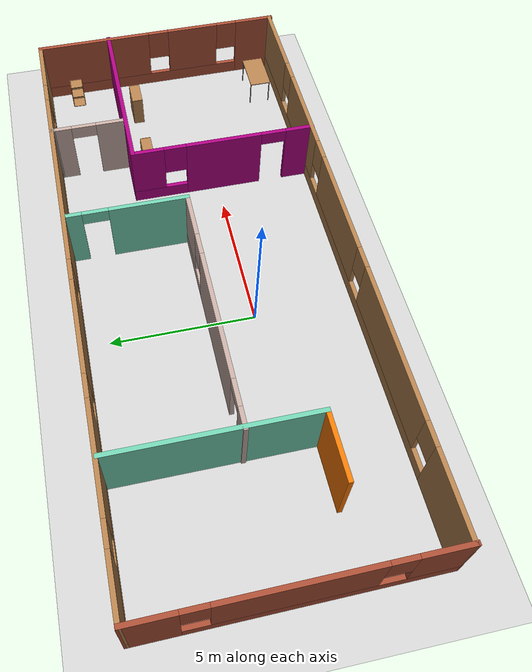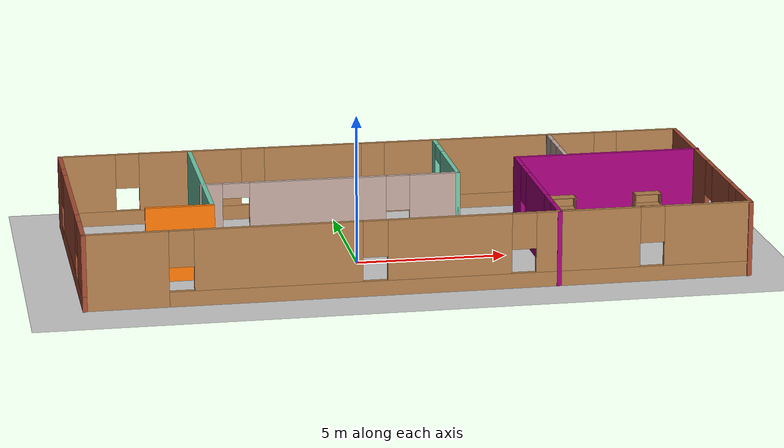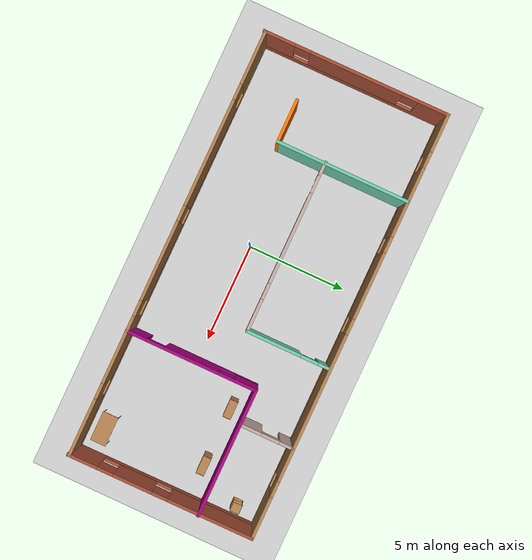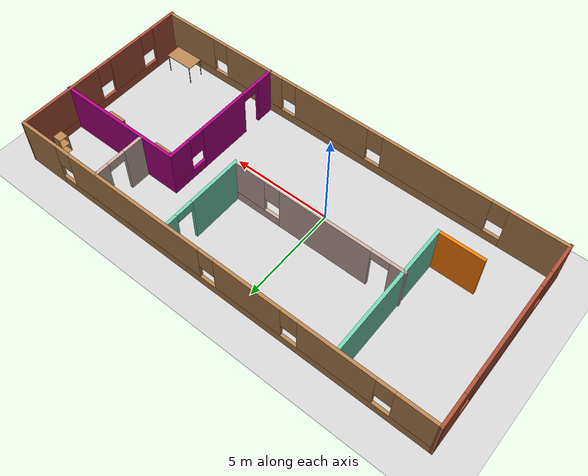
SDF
<sdf version="1.6">
 <world name="default">
  <model name="ground_plane">
   <static>1</static>
   <link name="link">
    <collision name="collision">
     <geometry><plane><normal>0 0 1</normal><size>100 100</size></plane></geometry>
     <surface>
      <contact><collide_bitmask>65535</collide_bitmask></contact>
      <friction><ode><mu>100</mu><mu2>50</mu2></ode></friction>
     </surface>
    </collision>
    <visual name="visual">
     <cast_shadows>0</cast_shadows>
     <geometry><plane><normal>0 0 1</normal><size>100 100</size></plane></geometry>
     <material>
      <script><uri>file://media/materials/scripts/gazebo.material</uri><name>Gazebo/Grey</name></script>
     </material>
    </visual>
   </link>
  </model>
  <model name="appartment">
   <pose>1.54362 1.13807 0 0 -0 0</pose>
   <link name="Wall_12">
    <collision name="Wall_12_Collision">
     <geometry><box><size>6.75 0.15 2.5</size></box></geometry>
     <pose>0 0 1.25 0 -0 0</pose>
    </collision>
    <visual name="Wall_12_Visual">
     <pose>0 0 1.25 0 -0 0</pose>
     <geometry><box><size>6.75 0.15 2.5</size></box></geometry>
     <material>
      <script><uri>file://media/materials/scripts/gazebo.material</uri><name>Gazebo/Grey</name></script>
      <ambient>0.435294 0.796078 0.67451 1</ambient>
     </material>
     <meta><layer>0</layer></meta>
    </visual>
    <pose>-6.40578 1.32366 0 0 0 -1.5708</pose>
   </link>
   <link name="Wall_13">
    <collision name="Wall_13_Collision">
     <geometry><box><size>2.25 0.15 2.5</size></box></geometry>
     <pose>0 0 1.25 0 -0 0</pose>
    </collision>
    <visual name="Wall_13_Visual">
     <pose>0 0 1.25 0 -0 0</pose>
     <geometry><box><size>2.25 0.15 2.5</size></box></geometry>
     <material>
      <script><uri>file://media/materials/scripts/gazebo.material</uri><name>Gazebo/Grey</name></script>
      <ambient>0.996078 0.47451 0.0196078 1</ambient>
     </material>
     <meta><layer>0</layer></meta>
    </visual>
    <pose>-7.45578 -1.97634 0 0 -0 3.14159</pose>
   </link>
   <link name="Wall_15">
    <pose>-2.15231 0.436508 0 0 -0 0</pose>
    <visual name="Wall_15_Visual_0">
     <pose>-4.00421 0 1.25 0 -0 0</pose>
     <geometry><box><size>0.741574 0.15 2.5</size></box></geometry>
     <material>
      <script><uri>file://media/materials/scripts/gazebo.material</uri><name>Gazebo/Grey</name></script>
      <ambient>0.760784 0.662745 0.627451 1</ambient>
     </material>
     <meta><layer>0</layer></meta>
    </visual>
    <collision name="Wall_15_Collision_0">
     <geometry><box><size>0.741574 0.15 2.5</size></box></geometry>
     <pose>-4.00421 0 1.25 0 -0 0</pose>
    </collision>
    <visual name="Wall_15_Visual_1">
     <pose>-0.436777 0 1.25 0 -0 0</pose>
     <geometry><box><size>4.5933 0.15 2.5</size></box></geometry>
     <material>
      <script><uri>file://media/materials/scripts/gazebo.material</uri><name>Gazebo/Grey</name></script>
      <ambient>0.760784 0.662745 0.627451 1</ambient>
     </material>
     <meta><layer>0</layer></meta>
    </visual>
    <collision name="Wall_15_Collision_1">
     <geometry><box><size>4.5933 0.15 2.5</size></box></geometry>
     <pose>-0.436777 0 1.25 0 -0 0</pose>
    </collision>
    <visual name="Wall_15_Visual_2">
     <pose>3.11744 0 0.25 0 -0 0</pose>
     <geometry><box><size>2.51513 0.15 0.5</size></box></geometry>
     <material>
      <script><uri>file://media/materials/scripts/gazebo.material</uri><name>Gazebo/Grey</name></script>
      <ambient>0.760784 0.662745 0.627451 1</ambient>
     </material>
     <meta><layer>0</layer></meta>
    </visual>
    <collision name="Wall_15_Collision_2">
     <geometry><box><size>2.51513 0.15 0.5</size></box></geometry>
     <pose>3.11744 0 0.25 0 -0 0</pose>
    </collision>
    <visual name="Wall_15_Visual_3">
     <pose>3.51744 0 1.5 0 -0 0</pose>
     <geometry><box><size>1.71513 0.15 2</size></box></geometry>
     <material>
      <script><uri>file://media/materials/scripts/gazebo.material</uri><name>Gazebo/Grey</name></script>
      <ambient>0.760784 0.662745 0.627451 1</ambient>
     </material>
     <meta><layer>0</layer></meta>
    </visual>
    <collision name="Wall_15_Collision_3">
     <geometry><box><size>1.71513 0.15 2</size></box></geometry>
     <pose>3.51744 0 1.5 0 -0 0</pose>
    </collision>
    <visual name="Wall_15_Visual_4">
     <pose>2.25987 0 1.9 0 -0 0</pose>
     <geometry><box><size>0.8 0.15 1.2</size></box></geometry>
     <material>
      <script><uri>file://media/materials/scripts/gazebo.material</uri><name>Gazebo/Grey</name></script>
      <ambient>0.760784 0.662745 0.627451 1</ambient>
     </material>
     <meta><layer>0</layer></meta>
    </visual>
    <collision name="Wall_15_Collision_4">
     <geometry><box><size>0.8 0.15 1.2</size></box></geometry>
     <pose>2.25987 0 1.9 0 -0 0</pose>
    </collision>
    <visual name="Wall_15_Visual_5">
     <pose>-3.18343 0 2.25 0 -0 0</pose>
     <geometry><box><size>0.9 0.15 0.5</size></box></geometry>
     <material>
      <script><uri>file://media/materials/scripts/gazebo.material</uri><name>Gazebo/Grey</name></script>
      <ambient>0.760784 0.662745 0.627451 1</ambient>
     </material>
     <meta><layer>0</layer></meta>
    </visual>
    <collision name="Wall_15_Collision_5">
     <geometry><box><size>0.9 0.15 0.5</size></box></geometry>
     <pose>-3.18343 0 2.25 0 -0 0</pose>
    </collision>
   </link>
   <link name="Wall_16">
    <pose>2.1477 2.48651 0 0 -0 1.5708</pose>
    <visual name="Wall_16_Visual_0">
     <pose>-0.730687 0 1.25 0 -0 0</pose>
     <geometry><box><size>2.78863 0.15 2.5</size></box></geometry>
     <material>
      <script><uri>file://media/materials/scripts/gazebo.material</uri><name>Gazebo/Grey</name></script>
      <ambient>0.435294 0.796078 0.67451 1</ambient>
     </material>
     <meta><layer>0</layer></meta>
    </visual>
    <collision name="Wall_16_Collision_0">
     <geometry><box><size>2.78863 0.15 2.5</size></box></geometry>
     <pose>-0.730687 0 1.25 0 -0 0</pose>
    </collision>
    <visual name="Wall_16_Visual_1">
     <pose>1.84431 0 1.25 0 -0 0</pose>
     <geometry><box><size>0.561374 0.15 2.5</size></box></geometry>
     <material>
      <script><uri>file://media/materials/scripts/gazebo.material</uri><name>Gazebo/Grey</name></script>
      <ambient>0.435294 0.796078 0.67451 1</ambient>
     </material>
     <meta><layer>0</layer></meta>
    </visual>
    <collision name="Wall_16_Collision_1">
     <geometry><box><size>0.561374 0.15 2.5</size></box></geometry>
     <pose>1.84431 0 1.25 0 -0 0</pose>
    </collision>
    <visual name="Wall_16_Visual_2">
     <pose>1.11363 0 2.25 0 -0 0</pose>
     <geometry><box><size>0.9 0.15 0.5</size></box></geometry>
     <material>
      <script><uri>file://media/materials/scripts/gazebo.material</uri><name>Gazebo/Grey</name></script>
      <ambient>0.435294 0.796078 0.67451 1</ambient>
     </material>
     <meta><layer>0</layer></meta>
    </visual>
    <collision name="Wall_16_Collision_2">
     <geometry><box><size>0.9 0.15 0.5</size></box></geometry>
     <pose>1.11363 0 2.25 0 -0 0</pose>
    </collision>
   </link>
   <link name="Wall_18">
    <pose>4.48081 -1.3346 0 0 -0 1.5708</pose>
    <visual name="Wall_18_Visual_0">
     <pose>-2.84138 0 1.25 0 -0 0</pose>
     <geometry><box><size>1.06724 0.15 2.5</size></box></geometry>
     <material>
      <script><uri>file://media/materials/scripts/gazebo.material</uri><name>Gazebo/Grey</name></script>
      <ambient>0.666667 0 0.498039 1</ambient>
     </material>
     <meta><layer>0</layer></meta>
    </visual>
    <collision name="Wall_18_Collision_0">
     <geometry><box><size>1.06724 0.15 2.5</size></box></geometry>
     <pose>-2.84138 0 1.25 0 -0 0</pose>
    </collision>
    <visual name="Wall_18_Visual_1">
     <pose>-0.018326 0 1.25 0 -0 0</pose>
     <geometry><box><size>2.77887 0.15 2.5</size></box></geometry>
     <material>
      <script><uri>file://media/materials/scripts/gazebo.material</uri><name>Gazebo/Grey</name></script>
      <ambient>0.666667 0 0.498039 1</ambient>
     </material>
     <meta><layer>0</layer></meta>
    </visual>
    <collision name="Wall_18_Collision_1">
     <geometry><box><size>2.77887 0.15 2.5</size></box></geometry>
     <pose>-0.018326 0 1.25 0 -0 0</pose>
    </collision>
    <visual name="Wall_18_Visual_2">
     <pose>2.37305 0 0.25 0 -0 0</pose>
     <geometry><box><size>2.00389 0.15 0.5</size></box></geometry>
     <material>
      <script><uri>file://media/materials/scripts/gazebo.material</uri><name>Gazebo/Grey</name></script>
      <ambient>0.666667 0 0.498039 1</ambient>
     </material>
     <meta><layer>0</layer></meta>
    </visual>
    <collision name="Wall_18_Collision_2">
     <geometry><box><size>2.00389 0.15 0.5</size></box></geometry>
     <pose>2.37305 0 0.25 0 -0 0</pose>
    </collision>
    <visual name="Wall_18_Visual_3">
     <pose>2.77305 0 1.5 0 -0 0</pose>
     <geometry><box><size>1.20389 0.15 2</size></box></geometry>
     <material>
      <script><uri>file://media/materials/scripts/gazebo.material</uri><name>Gazebo/Grey</name></script>
      <ambient>0.666667 0 0.498039 1</ambient>
     </material>
     <meta><layer>0</layer></meta>
    </visual>
    <collision name="Wall_18_Collision_3">
     <geometry><box><size>1.20389 0.15 2</size></box></geometry>
     <pose>2.77305 0 1.5 0 -0 0</pose>
    </collision>
    <visual name="Wall_18_Visual_4">
     <pose>1.77111 0 1.9 0 -0 0</pose>
     <geometry><box><size>0.8 0.15 1.2</size></box></geometry>
     <material>
      <script><uri>file://media/materials/scripts/gazebo.material</uri><name>Gazebo/Grey</name></script>
      <ambient>0.666667 0 0.498039 1</ambient>
     </material>
     <meta><layer>0</layer></meta>
    </visual>
    <collision name="Wall_18_Collision_4">
     <geometry><box><size>0.8 0.15 1.2</size></box></geometry>
     <pose>1.77111 0 1.9 0 -0 0</pose>
    </collision>
    <visual name="Wall_18_Visual_5">
     <pose>-1.85776 0 2.25 0 -0 0</pose>
     <geometry><box><size>0.9 0.15 0.5</size></box></geometry>
     <material>
      <script><uri>file://media/materials/scripts/gazebo.material</uri><name>Gazebo/Grey</name></script>
      <ambient>0.666667 0 0.498039 1</ambient>
     </material>
     <meta><layer>0</layer></meta>
    </visual>
    <collision name="Wall_18_Collision_5">
     <geometry><box><size>0.9 0.15 0.5</size></box></geometry>
     <pose>-1.85776 0 2.25 0 -0 0</pose>
    </collision>
   </link>
   <link name="Wall_19">
    <collision name="Wall_19_Collision">
     <geometry><box><size>6.5 0.15 2.5</size></box></geometry>
     <pose>0 0 1.25 0 -0 0</pose>
    </collision>
    <visual name="Wall_19_Visual">
     <pose>0 0 1.25 0 -0 0</pose>
     <geometry><box><size>6.5 0.15 2.5</size></box></geometry>
     <material>
      <script><uri>file://media/materials/scripts/gazebo.material</uri><name>Gazebo/Grey</name></script>
      <ambient>0.666667 0 0.498039 1</ambient>
     </material>
     <meta><layer>0</layer></meta>
    </visual>
    <pose>7.65581 1.9654 0 0 -0 0</pose>
   </link>
   <link name="Wall_21">
    <collision name="Wall_21_Collision">
     <geometry><box><size>0.16 0.15 2.5</size></box></geometry>
     <pose>0 0 1.25 0 -0 0</pose>
    </collision>
    <visual name="Wall_21_Visual">
     <pose>0 0 1.25 0 -0 0</pose>
     <geometry><box><size>0.16 0.15 2.5</size></box></geometry>
     <material>
      <script><uri>file://media/materials/scripts/gazebo.material</uri><name>Gazebo/Grey</name></script>
      <ambient>1 1 1 1</ambient>
     </material>
     <meta><layer>0</layer></meta>
    </visual>
    <pose>6.2072 4.62366 0 0 -0 0</pose>
   </link>
   <link name="Wall_22">
    <pose>6.2122 3.32366 0 0 0 -1.5708</pose>
    <visual name="Wall_22_Visual_0">
     <pose>-1.00421 0 1.25 0 -0 0</pose>
     <geometry><box><size>0.741574 0.15 2.5</size></box></geometry>
     <material>
      <script><uri>file://media/materials/scripts/gazebo.material</uri><name>Gazebo/Grey</name></script>
      <ambient>0.760784 0.662745 0.627451 1</ambient>
     </material>
     <meta><layer>0</layer></meta>
    </visual>
    <collision name="Wall_22_Collision_0">
     <geometry><box><size>0.741574 0.15 2.5</size></box></geometry>
     <pose>-1.00421 0 1.25 0 -0 0</pose>
    </collision>
    <visual name="Wall_22_Visual_1">
     <pose>0.820787 0 1.25 0 -0 0</pose>
     <geometry><box><size>1.10843 0.15 2.5</size></box></geometry>
     <material>
      <script><uri>file://media/materials/scripts/gazebo.material</uri><name>Gazebo/Grey</name></script>
      <ambient>0.760784 0.662745 0.627451 1</ambient>
     </material>
     <meta><layer>0</layer></meta>
    </visual>
    <collision name="Wall_22_Collision_1">
     <geometry><box><size>1.10843 0.15 2.5</size></box></geometry>
     <pose>0.820787 0 1.25 0 -0 0</pose>
    </collision>
    <visual name="Wall_22_Visual_2">
     <pose>-0.183426 0 2.25 0 -0 0</pose>
     <geometry><box><size>0.9 0.15 0.5</size></box></geometry>
     <material>
      <script><uri>file://media/materials/scripts/gazebo.material</uri><name>Gazebo/Grey</name></script>
      <ambient>0.760784 0.662745 0.627451 1</ambient>
     </material>
     <meta><layer>0</layer></meta>
    </visual>
    <collision name="Wall_22_Collision_2">
     <geometry><box><size>0.9 0.15 0.5</size></box></geometry>
     <pose>-0.183426 0 2.25 0 -0 0</pose>
    </collision>
   </link>
   <link name="Wall_5">
    <pose>-10.8072 0 0 0 0 -1.56582</pose>
    <visual name="Wall_5_Visual_0">
     <pose>-3.9564 0 1.25 0 -0 0</pose>
     <geometry><box><size>1.58732 0.15 2.5</size></box></geometry>
     <material>
      <script><uri>file://media/materials/scripts/gazebo.material</uri><name>Gazebo/Bricks</name></script>
      <ambient>1 1 1 1</ambient>
     </material>
     <meta><layer>0</layer></meta>
    </visual>
    <collision name="Wall_5_Collision_0">
     <geometry><box><size>1.58732 0.15 2.5</size></box></geometry>
     <pose>-3.9564 0 1.25 0 -0 0</pose>
    </collision>
    <visual name="Wall_5_Visual_1">
     <pose>0.79366 0 0.25 0 -0 0</pose>
     <geometry><box><size>7.9128 0.15 0.5</size></box></geometry>
     <material>
      <script><uri>file://media/materials/scripts/gazebo.material</uri><name>Gazebo/Bricks</name></script>
      <ambient>1 1 1 1</ambient>
     </material>
     <meta><layer>0</layer></meta>
    </visual>
    <collision name="Wall_5_Collision_1">
     <geometry><box><size>7.9128 0.15 0.5</size></box></geometry>
     <pose>0.79366 0 0.25 0 -0 0</pose>
    </collision>
    <visual name="Wall_5_Visual_2">
     <pose>-0.017793 0 1.5 0 -0 0</pose>
     <geometry><box><size>4.68989 0.15 2</size></box></geometry>
     <material>
      <script><uri>file://media/materials/scripts/gazebo.material</uri><name>Gazebo/Bricks</name></script>
      <ambient>1 1 1 1</ambient>
     </material>
     <meta><layer>0</layer></meta>
    </visual>
    <collision name="Wall_5_Collision_2">
     <geometry><box><size>4.68989 0.15 2</size></box></geometry>
     <pose>-0.017793 0 1.5 0 -0 0</pose>
    </collision>
    <visual name="Wall_5_Visual_3">
     <pose>3.9386 0 1.5 0 -0 0</pose>
     <geometry><box><size>1.62291 0.15 2</size></box></geometry>
     <material>
      <script><uri>file://media/materials/scripts/gazebo.material</uri><name>Gazebo/Bricks</name></script>
      <ambient>1 1 1 1</ambient>
     </material>
     <meta><layer>0</layer></meta>
    </visual>
    <collision name="Wall_5_Collision_3">
     <geometry><box><size>1.62291 0.15 2</size></box></geometry>
     <pose>3.9386 0 1.5 0 -0 0</pose>
    </collision>
    <visual name="Wall_5_Visual_4">
     <pose>-2.76274 0 1.9 0 -0 0</pose>
     <geometry><box><size>0.8 0.15 1.2</size></box></geometry>
     <material>
      <script><uri>file://media/materials/scripts/gazebo.material</uri><name>Gazebo/Bricks</name></script>
      <ambient>1 1 1 1</ambient>
     </material>
     <meta><layer>0</layer></meta>
    </visual>
    <collision name="Wall_5_Collision_4">
     <geometry><box><size>0.8 0.15 1.2</size></box></geometry>
     <pose>-2.76274 0 1.9 0 -0 0</pose>
    </collision>
    <visual name="Wall_5_Visual_5">
     <pose>2.72715 0 1.9 0 -0 0</pose>
     <geometry><box><size>0.8 0.15 1.2</size></box></geometry>
     <material>
      <script><uri>file://media/materials/scripts/gazebo.material</uri><name>Gazebo/Bricks</name></script>
      <ambient>1 1 1 1</ambient>
     </material>
     <meta><layer>0</layer></meta>
    </visual>
    <collision name="Wall_5_Collision_5">
     <geometry><box><size>0.8 0.15 1.2</size></box></geometry>
     <pose>2.72715 0 1.9 0 -0 0</pose>
    </collision>
   </link>
   <link name="Wall_6">
    <pose>0.016081 -4.62848 0 0 -0 0</pose>
    <visual name="Wall_6_Visual_0">
     <pose>-9.49977 0 1.25 0 -0 0</pose>
     <geometry><box><size>2.75047 0.15 2.5</size></box></geometry>
     <material>
      <script><uri>file://media/materials/scripts/gazebo.material</uri><name>Gazebo/Wood</name></script>
      <ambient>1 1 1 1</ambient>
     </material>
     <meta><layer>0</layer></meta>
    </visual>
    <collision name="Wall_6_Collision_0">
     <geometry><box><size>2.75047 0.15 2.5</size></box></geometry>
     <pose>-9.49977 0 1.25 0 -0 0</pose>
    </collision>
    <visual name="Wall_6_Visual_1">
     <pose>1.37523 0 0.25 0 -0 0</pose>
     <geometry><box><size>18.9995 0.15 0.5</size></box></geometry>
     <material>
      <script><uri>file://media/materials/scripts/gazebo.material</uri><name>Gazebo/Wood</name></script>
      <ambient>1 1 1 1</ambient>
     </material>
     <meta><layer>0</layer></meta>
    </visual>
    <collision name="Wall_6_Collision_1">
     <geometry><box><size>18.9995 0.15 0.5</size></box></geometry>
     <pose>1.37523 0 0.25 0 -0 0</pose>
    </collision>
    <visual name="Wall_6_Visual_2">
     <pose>-4.63069 0 1.5 0 -0 0</pose>
     <geometry><box><size>5.38768 0.15 2</size></box></geometry>
     <material>
      <script><uri>file://media/materials/scripts/gazebo.material</uri><name>Gazebo/Wood</name></script>
      <ambient>1 1 1 1</ambient>
     </material>
     <meta><layer>0</layer></meta>
    </visual>
    <collision name="Wall_6_Collision_2">
     <geometry><box><size>5.38768 0.15 2</size></box></geometry>
     <pose>-4.63069 0 1.5 0 -0 0</pose>
    </collision>
    <visual name="Wall_6_Visual_3">
     <pose>0.882392 0 1.5 0 -0 0</pose>
     <geometry><box><size>4.03849 0.15 2</size></box></geometry>
     <material>
      <script><uri>file://media/materials/scripts/gazebo.material</uri><name>Gazebo/Wood</name></script>
      <ambient>1 1 1 1</ambient>
     </material>
     <meta><layer>0</layer></meta>
    </visual>
    <collision name="Wall_6_Collision_3">
     <geometry><box><size>4.03849 0.15 2</size></box></geometry>
     <pose>0.882392 0 1.5 0 -0 0</pose>
    </collision>
    <visual name="Wall_6_Visual_4">
     <pose>5.41847 0 1.5 0 -0 0</pose>
     <geometry><box><size>3.43368 0.15 2</size></box></geometry>
     <material>
      <script><uri>file://media/materials/scripts/gazebo.material</uri><name>Gazebo/Wood</name></script>
      <ambient>1 1 1 1</ambient>
     </material>
     <meta><layer>0</layer></meta>
    </visual>
    <collision name="Wall_6_Collision_4">
     <geometry><box><size>3.43368 0.15 2</size></box></geometry>
     <pose>5.41847 0 1.5 0 -0 0</pose>
    </collision>
    <visual name="Wall_6_Visual_5">
     <pose>9.40516 0 1.5 0 -0 0</pose>
     <geometry><box><size>2.93969 0.15 2</size></box></geometry>
     <material>
      <script><uri>file://media/materials/scripts/gazebo.material</uri><name>Gazebo/Wood</name></script>
      <ambient>1 1 1 1</ambient>
     </material>
     <meta><layer>0</layer></meta>
    </visual>
    <collision name="Wall_6_Collision_5">
     <geometry><box><size>2.93969 0.15 2</size></box></geometry>
     <pose>9.40516 0 1.5 0 -0 0</pose>
    </collision>
    <visual name="Wall_6_Visual_6">
     <pose>-7.72453 0 1.9 0 -0 0</pose>
     <geometry><box><size>0.8 0.15 1.2</size></box></geometry>
     <material>
      <script><uri>file://media/materials/scripts/gazebo.material</uri><name>Gazebo/Wood</name></script>
      <ambient>1 1 1 1</ambient>
     </material>
     <meta><layer>0</layer></meta>
    </visual>
    <collision name="Wall_6_Collision_6">
     <geometry><box><size>0.8 0.15 1.2</size></box></geometry>
     <pose>-7.72453 0 1.9 0 -0 0</pose>
    </collision>
    <visual name="Wall_6_Visual_7">
     <pose>-1.53685 0 1.9 0 -0 0</pose>
     <geometry><box><size>0.8 0.15 1.2</size></box></geometry>
     <material>
      <script><uri>file://media/materials/scripts/gazebo.material</uri><name>Gazebo/Wood</name></script>
      <ambient>1 1 1 1</ambient>
     </material>
     <meta><layer>0</layer></meta>
    </visual>
    <collision name="Wall_6_Collision_7">
     <geometry><box><size>0.8 0.15 1.2</size></box></geometry>
     <pose>-1.53685 0 1.9 0 -0 0</pose>
    </collision>
    <visual name="Wall_6_Visual_8">
     <pose>3.30164 0 1.9 0 -0 0</pose>
     <geometry><box><size>0.8 0.15 1.2</size></box></geometry>
     <material>
      <script><uri>file://media/materials/scripts/gazebo.material</uri><name>Gazebo/Wood</name></script>
      <ambient>1 1 1 1</ambient>
     </material>
     <meta><layer>0</layer></meta>
    </visual>
    <collision name="Wall_6_Collision_8">
     <geometry><box><size>0.8 0.15 1.2</size></box></geometry>
     <pose>3.30164 0 1.9 0 -0 0</pose>
    </collision>
    <visual name="Wall_6_Visual_9">
     <pose>7.53531 0 1.9 0 -0 0</pose>
     <geometry><box><size>0.8 0.15 1.2</size></box></geometry>
     <material>
      <script><uri>file://media/materials/scripts/gazebo.material</uri><name>Gazebo/Wood</name></script>
      <ambient>1 1 1 1</ambient>
     </material>
     <meta><layer>0</layer></meta>
    </visual>
    <collision name="Wall_6_Collision_9">
     <geometry><box><size>0.8 0.15 1.2</size></box></geometry>
     <pose>7.53531 0 1.9 0 -0 0</pose>
    </collision>
   </link>
   <link name="Wall_7">
    <pose>10.7928 0 0 0 -0 1.57577</pose>
    <visual name="Wall_7_Visual_0">
     <pose>-3.98513 0 1.25 0 -0 0</pose>
     <geometry><box><size>1.52986 0.15 2.5</size></box></geometry>
     <material>
      <script><uri>file://media/materials/scripts/gazebo.material</uri><name>Gazebo/Bricks</name></script>
      <ambient>1 1 1 1</ambient>
     </material>
     <meta><layer>0</layer></meta>
    </visual>
    <collision name="Wall_7_Collision_0">
     <geometry><box><size>1.52986 0.15 2.5</size></box></geometry>
     <pose>-3.98513 0 1.25 0 -0 0</pose>
    </collision>
    <visual name="Wall_7_Visual_1">
     <pose>0.764929 0 0.25 0 -0 0</pose>
     <geometry><box><size>7.97026 0.15 0.5</size></box></geometry>
     <material>
      <script><uri>file://media/materials/scripts/gazebo.material</uri><name>Gazebo/Bricks</name></script>
      <ambient>1 1 1 1</ambient>
     </material>
     <meta><layer>0</layer></meta>
    </visual>
    <collision name="Wall_7_Collision_1">
     <geometry><box><size>7.97026 0.15 0.5</size></box></geometry>
     <pose>0.764929 0 0.25 0 -0 0</pose>
    </collision>
    <visual name="Wall_7_Visual_2">
     <pose>-1.42447 0 1.5 0 -0 0</pose>
     <geometry><box><size>1.99147 0.15 2</size></box></geometry>
     <material>
      <script><uri>file://media/materials/scripts/gazebo.material</uri><name>Gazebo/Bricks</name></script>
      <ambient>1 1 1 1</ambient>
     </material>
     <meta><layer>0</layer></meta>
    </visual>
    <collision name="Wall_7_Collision_2">
     <geometry><box><size>1.99147 0.15 2</size></box></geometry>
     <pose>-1.42447 0 1.5 0 -0 0</pose>
    </collision>
    <visual name="Wall_7_Visual_3">
     <pose>2.56066 0 1.5 0 -0 0</pose>
     <geometry><box><size>4.37879 0.15 2</size></box></geometry>
     <material>
      <script><uri>file://media/materials/scripts/gazebo.material</uri><name>Gazebo/Bricks</name></script>
      <ambient>1 1 1 1</ambient>
     </material>
     <meta><layer>0</layer></meta>
    </visual>
    <collision name="Wall_7_Collision_3">
     <geometry><box><size>4.37879 0.15 2</size></box></geometry>
     <pose>2.56066 0 1.5 0 -0 0</pose>
    </collision>
    <visual name="Wall_7_Visual_4">
     <pose>-2.8202 0 1.9 0 -0 0</pose>
     <geometry><box><size>0.8 0.15 1.2</size></box></geometry>
     <material>
      <script><uri>file://media/materials/scripts/gazebo.material</uri><name>Gazebo/Bricks</name></script>
      <ambient>1 1 1 1</ambient>
     </material>
     <meta><layer>0</layer></meta>
    </visual>
    <collision name="Wall_7_Collision_4">
     <geometry><box><size>0.8 0.15 1.2</size></box></geometry>
     <pose>-2.8202 0 1.9 0 -0 0</pose>
    </collision>
    <visual name="Wall_7_Visual_5">
     <pose>-0.028731 0 1.9 0 -0 0</pose>
     <geometry><box><size>0.8 0.15 1.2</size></box></geometry>
     <material>
      <script><uri>file://media/materials/scripts/gazebo.material</uri><name>Gazebo/Bricks</name></script>
      <ambient>1 1 1 1</ambient>
     </material>
     <meta><layer>0</layer></meta>
    </visual>
    <collision name="Wall_7_Collision_5">
     <geometry><box><size>0.8 0.15 1.2</size></box></geometry>
     <pose>-0.028731 0 1.9 0 -0 0</pose>
    </collision>
   </link>
   <link name="Wall_8">
    <pose>-0.030442 4.675 0 0 -0 3.14159</pose>
    <visual name="Wall_8_Visual_0">
     <pose>-9.77735 0 1.25 0 -0 0</pose>
     <geometry><box><size>2.19531 0.15 2.5</size></box></geometry>
     <material>
      <script><uri>file://media/materials/scripts/gazebo.material</uri><name>Gazebo/Wood</name></script>
      <ambient>1 1 1 1</ambient>
     </material>
     <meta><layer>0</layer></meta>
    </visual>
    <collision name="Wall_8_Collision_0">
     <geometry><box><size>2.19531 0.15 2.5</size></box></geometry>
     <pose>-9.77735 0 1.25 0 -0 0</pose>
    </collision>
    <visual name="Wall_8_Visual_1">
     <pose>1.09765 0 0.25 0 -0 0</pose>
     <geometry><box><size>19.5547 0.15 0.5</size></box></geometry>
     <material>
      <script><uri>file://media/materials/scripts/gazebo.material</uri><name>Gazebo/Wood</name></script>
      <ambient>1 1 1 1</ambient>
     </material>
     <meta><layer>0</layer></meta>
    </visual>
    <collision name="Wall_8_Collision_1">
     <geometry><box><size>19.5547 0.15 0.5</size></box></geometry>
     <pose>1.09765 0 0.25 0 -0 0</pose>
    </collision>
    <visual name="Wall_8_Visual_2">
     <pose>-4.13907 0 1.5 0 -0 0</pose>
     <geometry><box><size>7.48126 0.15 2</size></box></geometry>
     <material>
      <script><uri>file://media/materials/scripts/gazebo.material</uri><name>Gazebo/Wood</name></script>
      <ambient>1 1 1 1</ambient>
     </material>
     <meta><layer>0</layer></meta>
    </visual>
    <collision name="Wall_8_Collision_2">
     <geometry><box><size>7.48126 0.15 2</size></box></geometry>
     <pose>-4.13907 0 1.5 0 -0 0</pose>
    </collision>
    <visual name="Wall_8_Visual_3">
     <pose>2.09514 0 1.5 0 -0 0</pose>
     <geometry><box><size>3.38715 0.15 2</size></box></geometry>
     <material>
      <script><uri>file://media/materials/scripts/gazebo.material</uri><name>Gazebo/Wood</name></script>
      <ambient>1 1 1 1</ambient>
     </material>
     <meta><layer>0</layer></meta>
    </visual>
    <collision name="Wall_8_Collision_3">
     <geometry><box><size>3.38715 0.15 2</size></box></geometry>
     <pose>2.09514 0 1.5 0 -0 0</pose>
    </collision>
    <visual name="Wall_8_Visual_4">
     <pose>6.35208 0 1.5 0 -0 0</pose>
     <geometry><box><size>3.52672 0.15 2</size></box></geometry>
     <material>
      <script><uri>file://media/materials/scripts/gazebo.material</uri><name>Gazebo/Wood</name></script>
      <ambient>1 1 1 1</ambient>
     </material>
     <meta><layer>0</layer></meta>
    </visual>
    <collision name="Wall_8_Collision_4">
     <geometry><box><size>3.52672 0.15 2</size></box></geometry>
     <pose>6.35208 0 1.5 0 -0 0</pose>
    </collision>
    <visual name="Wall_8_Visual_5">
     <pose>9.89522 0 1.5 0 -0 0</pose>
     <geometry><box><size>1.95956 0.15 2</size></box></geometry>
     <material>
      <script><uri>file://media/materials/scripts/gazebo.material</uri><name>Gazebo/Wood</name></script>
      <ambient>1 1 1 1</ambient>
     </material>
     <meta><layer>0</layer></meta>
    </visual>
    <collision name="Wall_8_Collision_5">
     <geometry><box><size>1.95956 0.15 2</size></box></geometry>
     <pose>9.89522 0 1.5 0 -0 0</pose>
    </collision>
    <visual name="Wall_8_Visual_6">
     <pose>-8.27969 0 1.9 0 -0 0</pose>
     <geometry><box><size>0.8 0.15 1.2</size></box></geometry>
     <material>
      <script><uri>file://media/materials/scripts/gazebo.material</uri><name>Gazebo/Wood</name></script>
      <ambient>1 1 1 1</ambient>
     </material>
     <meta><layer>0</layer></meta>
    </visual>
    <collision name="Wall_8_Collision_6">
     <geometry><box><size>0.8 0.15 1.2</size></box></geometry>
     <pose>-8.27969 0 1.9 0 -0 0</pose>
    </collision>
    <visual name="Wall_8_Visual_7">
     <pose>0.001562 0 1.9 0 -0 0</pose>
     <geometry><box><size>0.8 0.15 1.2</size></box></geometry>
     <material>
      <script><uri>file://media/materials/scripts/gazebo.material</uri><name>Gazebo/Wood</name></script>
      <ambient>1 1 1 1</ambient>
     </material>
     <meta><layer>0</layer></meta>
    </visual>
    <collision name="Wall_8_Collision_7">
     <geometry><box><size>0.8 0.15 1.2</size></box></geometry>
     <pose>0.001562 0 1.9 0 -0 0</pose>
    </collision>
    <visual name="Wall_8_Visual_8">
     <pose>4.18871 0 1.9 0 -0 0</pose>
     <geometry><box><size>0.8 0.15 1.2</size></box></geometry>
     <material>
      <script><uri>file://media/materials/scripts/gazebo.material</uri><name>Gazebo/Wood</name></script>
      <ambient>1 1 1 1</ambient>
     </material>
     <meta><layer>0</layer></meta>
    </visual>
    <collision name="Wall_8_Collision_8">
     <geometry><box><size>0.8 0.15 1.2</size></box></geometry>
     <pose>4.18871 0 1.9 0 -0 0</pose>
    </collision>
    <visual name="Wall_8_Visual_9">
     <pose>8.51544 0 1.9 0 -0 0</pose>
     <geometry><box><size>0.8 0.15 1.2</size></box></geometry>
     <material>
      <script><uri>file://media/materials/scripts/gazebo.material</uri><name>Gazebo/Wood</name></script>
      <ambient>1 1 1 1</ambient>
     </material>
     <meta><layer>0</layer></meta>
    </visual>
    <collision name="Wall_8_Collision_9">
     <geometry><box><size>0.8 0.15 1.2</size></box></geometry>
     <pose>8.51544 0 1.9 0 -0 0</pose>
    </collision>
   </link>
   <static>1</static>
  </model>
  <model name="bookshelf_0">
   <static>1</static>
   <link name="link">
    <inertial><mass>1</mass></inertial>
    <collision name="back">
     <pose>0 0.005 0.6 0 -0 0</pose>
     <geometry><box><size>0.9 0.01 1.2</size></box></geometry>
    </collision>
    <visual name="visual1">
     <pose>0 0.005 0.6 0 -0 0</pose>
     <geometry><box><size>0.9 0.01 1.2</size></box></geometry>
     <material>
      <script><uri>file://media/materials/scripts/gazebo.material</uri><name>Gazebo/Wood</name></script>
     </material>
    </visual>
    <collision name="left_side">
     <pose>0.45 -0.195 0.6 0 -0 0</pose>
     <geometry><box><size>0.02 0.4 1.2</size></box></geometry>
    </collision>
    <visual name="visual2">
     <pose>0.45 -0.195 0.6 0 -0 0</pose>
     <geometry><box><size>0.02 0.4 1.2</size></box></geometry>
     <material>
      <script><uri>file://media/materials/scripts/gazebo.material</uri><name>Gazebo/Wood</name></script>
     </material>
    </visual>
    <collision name="right_side">
     <pose>-0.45 -0.195 0.6 0 -0 0</pose>
     <geometry><box><size>0.02 0.4 1.2</size></box></geometry>
    </collision>
    <visual name="visual3">
     <pose>-0.45 -0.195 0.6 0 -0 0</pose>
     <geometry><box><size>0.02 0.4 1.2</size></box></geometry>
     <material>
      <script><uri>file://media/materials/scripts/gazebo.material</uri><name>Gazebo/Wood</name></script>
     </material>
    </visual>
    <collision name="bottom">
     <pose>0 -0.195 0.03 0 -0 0</pose>
     <geometry><box><size>0.88 0.4 0.06</size></box></geometry>
    </collision>
    <visual name="visual4">
     <pose>0 -0.195 0.03 0 -0 0</pose>
     <geometry><box><size>0.88 0.4 0.06</size></box></geometry>
     <material>
      <script><uri>file://media/materials/scripts/gazebo.material</uri><name>Gazebo/Wood</name></script>
     </material>
    </visual>
    <collision name="top">
     <pose>0 -0.195 1.19 0 -0 0</pose>
     <geometry><box><size>0.88 0.4 0.02</size></box></geometry>
    </collision>
    <visual name="visual5">
     <pose>0 -0.195 1.19 0 -0 0</pose>
     <geometry><box><size>0.88 0.4 0.02</size></box></geometry>
     <material>
      <script><uri>file://media/materials/scripts/gazebo.material</uri><name>Gazebo/Wood</name></script>
     </material>
    </visual>
    <collision name="low_shelf">
     <pose>0 -0.195 0.43 0 -0 0</pose>
     <geometry><box><size>0.88 0.4 0.02</size></box></geometry>
    </collision>
    <visual name="visual6">
     <pose>0 -0.195 0.43 0 -0 0</pose>
     <geometry><box><size>0.88 0.4 0.02</size></box></geometry>
     <material>
      <script><uri>file://media/materials/scripts/gazebo.material</uri><name>Gazebo/Wood</name></script>
     </material>
    </visual>
    <collision name="high_shelf">
     <pose>0 -0.195 0.8 0 -0 0</pose>
     <geometry><box><size>0.88 0.4 0.02</size></box></geometry>
    </collision>
    <visual name="visual7">
     <pose>0 -0.195 0.8 0 -0 0</pose>
     <geometry><box><size>0.88 0.4 0.02</size></box></geometry>
     <material>
      <script><uri>file://media/materials/scripts/gazebo.material</uri><name>Gazebo/Wood</name></script>
     </material>
    </visual>
   </link>
   <pose>7.48794 2.62439 0 0 -0 0</pose>
  </model>
  <model name="bookshelf_1">
   <static>1</static>
   <link name="link">
    <inertial><mass>1</mass></inertial>
    <collision name="back">
     <pose>0 0.005 0.6 0 -0 0</pose>
     <geometry><box><size>0.9 0.01 1.2</size></box></geometry>
    </collision>
    <visual name="visual1">
     <pose>0 0.005 0.6 0 -0 0</pose>
     <geometry><box><size>0.9 0.01 1.2</size></box></geometry>
     <material>
      <script><uri>file://media/materials/scripts/gazebo.material</uri><name>Gazebo/Wood</name></script>
     </material>
    </visual>
    <collision name="left_side">
     <pose>0.45 -0.195 0.6 0 -0 0</pose>
     <geometry><box><size>0.02 0.4 1.2</size></box></geometry>
    </collision>
    <visual name="visual2">
     <pose>0.45 -0.195 0.6 0 -0 0</pose>
     <geometry><box><size>0.02 0.4 1.2</size></box></geometry>
     <material>
      <script><uri>file://media/materials/scripts/gazebo.material</uri><name>Gazebo/Wood</name></script>
     </material>
    </visual>
    <collision name="right_side">
     <pose>-0.45 -0.195 0.6 0 -0 0</pose>
     <geometry><box><size>0.02 0.4 1.2</size></box></geometry>
    </collision>
    <visual name="visual3">
     <pose>-0.45 -0.195 0.6 0 -0 0</pose>
     <geometry><box><size>0.02 0.4 1.2</size></box></geometry>
     <material>
      <script><uri>file://media/materials/scripts/gazebo.material</uri><name>Gazebo/Wood</name></script>
     </material>
    </visual>
    <collision name="bottom">
     <pose>0 -0.195 0.03 0 -0 0</pose>
     <geometry><box><size>0.88 0.4 0.06</size></box></geometry>
    </collision>
    <visual name="visual4">
     <pose>0 -0.195 0.03 0 -0 0</pose>
     <geometry><box><size>0.88 0.4 0.06</size></box></geometry>
     <material>
      <script><uri>file://media/materials/scripts/gazebo.material</uri><name>Gazebo/Wood</name></script>
     </material>
    </visual>
    <collision name="top">
     <pose>0 -0.195 1.19 0 -0 0</pose>
     <geometry><box><size>0.88 0.4 0.02</size></box></geometry>
    </collision>
    <visual name="visual5">
     <pose>0 -0.195 1.19 0 -0 0</pose>
     <geometry><box><size>0.88 0.4 0.02</size></box></geometry>
     <material>
      <script><uri>file://media/materials/scripts/gazebo.material</uri><name>Gazebo/Wood</name></script>
     </material>
    </visual>
    <collision name="low_shelf">
     <pose>0 -0.195 0.43 0 -0 0</pose>
     <geometry><box><size>0.88 0.4 0.02</size></box></geometry>
    </collision>
    <visual name="visual6">
     <pose>0 -0.195 0.43 0 -0 0</pose>
     <geometry><box><size>0.88 0.4 0.02</size></box></geometry>
     <material>
      <script><uri>file://media/materials/scripts/gazebo.material</uri><name>Gazebo/Wood</name></script>
     </material>
    </visual>
    <collision name="high_shelf">
     <pose>0 -0.195 0.8 0 -0 0</pose>
     <geometry><box><size>0.88 0.4 0.02</size></box></geometry>
    </collision>
    <visual name="visual7">
     <pose>0 -0.195 0.8 0 -0 0</pose>
     <geometry><box><size>0.88 0.4 0.02</size></box></geometry>
     <material>
      <script><uri>file://media/materials/scripts/gazebo.material</uri><name>Gazebo/Wood</name></script>
     </material>
    </visual>
   </link>
   <pose>10.4717 2.59781 0 0 -0 0</pose>
  </model>
  <model name="table_1">
   <static>1</static>
   <link name="link">
    <collision name="surface">
     <pose>0 0 1 0 -0 0</pose>
     <geometry><box><size>1.5 0.8 0.03</size></box></geometry>
     <surface><friction><ode><mu>0.6</mu><mu2>0.6</mu2></ode></friction></surface>
    </collision>
    <visual name="visual1">
     <pose>0 0 1 0 -0 0</pose>
     <geometry><box><size>1.5 0.8 0.03</size></box></geometry>
     <material>
      <script><uri>file://media/materials/scripts/gazebo.material</uri><name>Gazebo/Wood</name></script>
     </material>
    </visual>
    <collision name="front_left_leg">
     <pose>0.68 0.38 0.5 0 -0 0</pose>
     <geometry><cylinder><radius>0.02</radius><length>1</length></cylinder></geometry>
    </collision>
    <visual name="front_left_leg">
     <pose>0.68 0.38 0.5 0 -0 0</pose>
     <geometry><cylinder><radius>0.02</radius><length>1</length></cylinder></geometry>
     <material>
      <script><uri>file://media/materials/scripts/gazebo.material</uri><name>Gazebo/Grey</name></script>
     </material>
    </visual>
    <collision name="front_right_leg">
     <pose>0.68 -0.38 0.5 0 -0 0</pose>
     <geometry><cylinder><radius>0.02</radius><length>1</length></cylinder></geometry>
    </collision>
    <visual name="front_right_leg">
     <pose>0.68 -0.38 0.5 0 -0 0</pose>
     <geometry><cylinder><radius>0.02</radius><length>1</length></cylinder></geometry>
     <material>
      <script><uri>file://media/materials/scripts/gazebo.material</uri><name>Gazebo/Grey</name></script>
     </material>
    </visual>
    <collision name="back_right_leg">
     <pose>-0.68 -0.38 0.5 0 -0 0</pose>
     <geometry><cylinder><radius>0.02</radius><length>1</length></cylinder></geometry>
    </collision>
    <visual name="back_right_leg">
     <pose>-0.68 -0.38 0.5 0 -0 0</pose>
     <geometry><cylinder><radius>0.02</radius><length>1</length></cylinder></geometry>
     <material>
      <script><uri>file://media/materials/scripts/gazebo.material</uri><name>Gazebo/Grey</name></script>
     </material>
    </visual>
    <collision name="back_left_leg">
     <pose>-0.68 0.38 0.5 0 -0 0</pose>
     <geometry><cylinder><radius>0.02</radius><length>1</length></cylinder></geometry>
    </collision>
    <visual name="back_left_leg">
     <pose>-0.68 0.38 0.5 0 -0 0</pose>
     <geometry><cylinder><radius>0.02</radius><length>1</length></cylinder></geometry>
     <material>
      <script><uri>file://media/materials/scripts/gazebo.material</uri><name>Gazebo/Grey</name></script>
     </material>
    </visual>
   </link>
   <pose>10.9027 -2.66712 0 0 -0 0</pose>
  </model>
  <model name="cabinet_2">
   <static>1</static>
   <link name="cabinet_bottom_plate">
    <inertial>
     <pose>0 0 -1 0 -0 0</pose>
     <inertia><ixx>2.05</ixx><ixy>0</ixy><ixz>0</ixz><iyy>2.05</iyy><iyz>0</iyz><izz>2.05</izz></inertia>
     <mass>25</mass>
    </inertial>
    <collision name="cabinet_bottom_plate_geom">
     <pose>0 0 0.01 0 -0 0</pose>
     <geometry><box><size>0.45 0.45 0.02</size></box></geometry>
    </collision>
    <visual name="cabinet_bottom_plate_geom_visual">
     <pose>0 0 0.01 0 -0 0</pose>
     <geometry><box><size>0.45 0.45 0.02</size></box></geometry>
     <material>
      <script><uri>file://media/materials/scripts/gazebo.material</uri><name>Gazebo/Wood</name></script>
     </material>
    </visual>
    <collision name="cabinet_bottom_plate_geom_cabinet_back_plate">
     <pose>0.235 0 0.51 0 -0 0</pose>
     <geometry><box><size>0.02 0.45 1.02</size></box></geometry>
    </collision>
    <visual name="cabinet_bottom_plate_geom_cabinet_back_plate_visual">
     <pose>0.235 0 0.51 0 -0 0</pose>
     <geometry><box><size>0.02 0.45 1.02</size></box></geometry>
     <material>
      <script><uri>file://media/materials/scripts/gazebo.material</uri><name>Gazebo/Wood</name></script>
     </material>
    </visual>
    <collision name="cabinet_bottom_plate_geom_cabinet_left_plate">
     <pose>0 0.235 0.51 0 -0 0</pose>
     <geometry><box><size>0.45 0.02 1.02</size></box></geometry>
    </collision>
    <visual name="cabinet_bottom_plate_geom_cabinet_left_plate_visual">
     <pose>0 0.235 0.51 0 -0 0</pose>
     <geometry><box><size>0.45 0.02 1.02</size></box></geometry>
     <material>
      <script><uri>file://media/materials/scripts/gazebo.material</uri><name>Gazebo/Wood</name></script>
     </material>
    </visual>
    <collision name="cabinet_bottom_plate_geom_cabinet_middle_plate">
     <pose>0 0 0.51 0 -0 0</pose>
     <geometry><box><size>0.45 0.45 0.02</size></box></geometry>
    </collision>
    <visual name="cabinet_bottom_plate_geom_cabinet_middle_plate_visual">
     <pose>0 0 0.51 0 -0 0</pose>
     <geometry><box><size>0.45 0.45 0.02</size></box></geometry>
     <material>
      <script><uri>file://media/materials/scripts/gazebo.material</uri><name>Gazebo/Wood</name></script>
     </material>
    </visual>
    <collision name="cabinet_bottom_plate_geom_cabinet_right_plate">
     <pose>0 -0.235 0.51 0 -0 0</pose>
     <geometry><box><size>0.45 0.02 1.02</size></box></geometry>
    </collision>
    <visual name="cabinet_bottom_plate_geom_cabinet_right_plate_visual">
     <pose>0 -0.235 0.51 0 -0 0</pose>
     <geometry><box><size>0.45 0.02 1.02</size></box></geometry>
     <material>
      <script><uri>file://media/materials/scripts/gazebo.material</uri><name>Gazebo/Wood</name></script>
     </material>
    </visual>
    <collision name="cabinet_bottom_plate_geom_cabinet_top_plate">
     <pose>0 0 1.01 0 -0 0</pose>
     <geometry><box><size>0.45 0.45 0.02</size></box></geometry>
    </collision>
    <visual name="cabinet_bottom_plate_geom_cabinet_top_plate_visual">
     <pose>0 0 1.01 0 -0 0</pose>
     <geometry><box><size>0.45 0.45 0.02</size></box></geometry>
     <material>
      <script><uri>file://media/materials/scripts/gazebo.material</uri><name>Gazebo/Wood</name></script>
     </material>
    </visual>
   </link>
   <pose>11.6997 4.66771 0 0 -0 0</pose>
  </model>
 </world>
</sdf>
